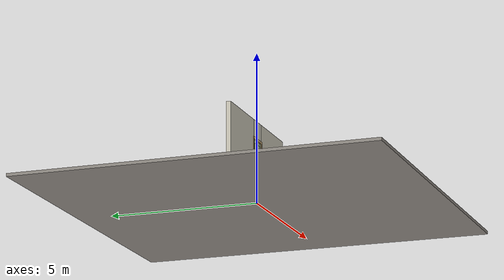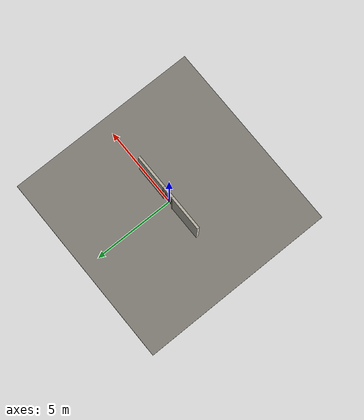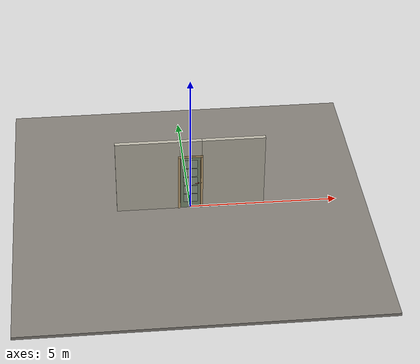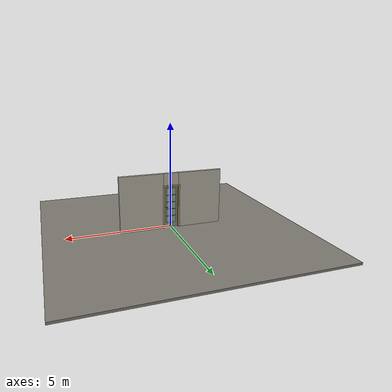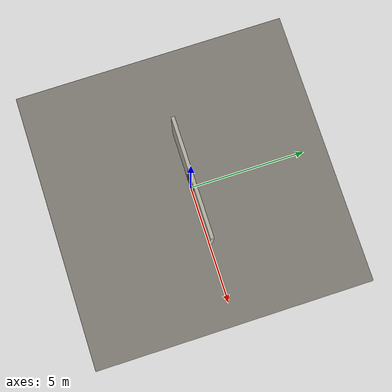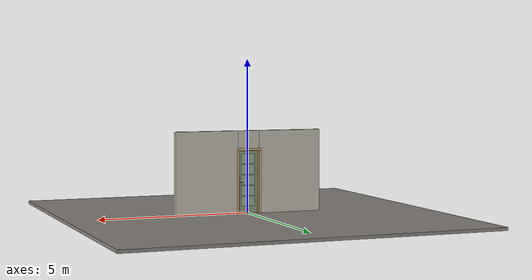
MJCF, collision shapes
<?xml version="1.0" ?>
<mujoco model="db0105_swing_single_full">
  <compiler angle="radian" meshdir="../../hardware" texturedir="../../textures" autolimits="true" inertiafromgeom="false"/>
  <option timestep="0.002" integrator="implicitfast" cone="elliptic" impratio="10" noslip_iterations="3">
    <flag multiccd="enable"/>
  </option>
  <size memory="16M"/>
  <default>
    <geom condim="4" solref="0.005 1" solimp="0.95 0.99 0.001"/>
    <joint solreflimit="0.005 1" solimplimit="0.95 0.99 0.001"/>
    <tendon solreflimit="0.005 1"/>
    <equality solref="0.002 1"/>
  </default>
  <visual>
    <headlight ambient="0.4 0.4 0.4" diffuse="0.7 0.7 0.7" specular="0.2 0.2 0.2"/>
    <quality shadowsize="4096"/>
    <map znear="0.01" zfar="60"/>
  </visual>
  <asset>
    <mesh name="hinge_96510cf394" file="hinge_96510cf394.obj"/>
    <mesh name="hinge_jamb_7fd4ca52b2" file="hinge_jamb_7fd4ca52b2.obj"/>
    <mesh name="lever_9f02b544cf" file="lever_9f02b544cf.obj"/>
    <material name="mat_floor" rgba="0.55 0.53 0.5 1" specular="0.2" shininess="0.15" reflectance="0"/>
    <material name="mat_wall" rgba="0.78 0.76 0.7 1" specular="0.2" shininess="0.1" reflectance="0"/>
    <material name="mat_leaf" rgba="0.55 0.62 0.5 1" specular="0.2" shininess="0.45" reflectance="0"/>
    <material name="mat_glass" rgba="0.85 0.92 0.95 0.25" specular="0.2" shininess="0.95" reflectance="0.1"/>
    <material name="mat_hinge" rgba="0.65 0.66 0.68 1" specular="0.74" shininess="0.5" reflectance="0.36"/>
    <material name="mat_op_nickel_satin" rgba="0.72 0.7 0.66 1" specular="0.8" shininess="0.65" reflectance="0.4"/>
    <material name="mat_trim" rgba="0.85 0.66 0.3 1" specular="0.8" shininess="0.75" reflectance="0.4"/>
    <material name="mat_bolt" rgba="0.85 0.66 0.3 1" specular="0.8" shininess="0.75" reflectance="0.4"/>
    <material name="mat_frame" rgba="0.82 0.7 0.5 1" specular="0.2" shininess="0.45" reflectance="0"/>
    <texture name="skybox" type="skybox" builtin="gradient" rgb1="0.6 0.7 0.85" rgb2="0.9 0.92 0.95" width="256" height="256"/>
  </asset>
  <worldbody>
    <light name="sun" pos="1.5 -2.5 4" dir="-0.3 0.5 -0.8" directional="true" diffuse="0.8 0.8 0.8" specular="0.3 0.3 0.3" castshadow="true"/>
    <light name="fill" pos="-1.5 2.5 3" dir="0.3 -0.5 -0.7" directional="true" diffuse="0.35 0.35 0.4" castshadow="false"/>
    <camera name="robot_view" pos="0 -2.494187 1.734312" xyaxes="1 0 0 0 0.26963 0.962964" fovy="52"/>
    <camera name="far_view" pos="0 2.590187 1.734312" xyaxes="-1 0 0 0 -0.26963 0.962964" fovy="52"/>
    <camera name="iso" pos="1.932062 -2.087438 2.141063" xyaxes="0.741536 0.670913 0 -0.242917 0.268487 0.932151" fovy="46"/>
    <camera name="detail_handle" pos="0.3495 -0.8725 1.296" xyaxes="0.97561 0.219512 0 -0.070934 0.315262 0.94635" fovy="38"/>
    <geom name="floor" type="box" size="6 6 0.05" pos="0 0 -0.05" material="mat_floor" group="0" contype="1" conaffinity="1" friction="0.8 0.005 0.0001" density="2400"/>
    <geom name="wall_left" type="box" size="1.07375 0.0725 1.35" pos="-1.42625 0.048 1.35" material="mat_wall" group="0" contype="1" conaffinity="1" friction="0.6 0.005 0.0001" density="800"/>
    <geom name="wall_right" type="box" size="1.05875 0.0725 1.35" pos="1.44125 0.048 1.35" material="mat_wall" group="0" contype="1" conaffinity="1" friction="0.6 0.005 0.0001" density="800"/>
    <geom name="wall_header" type="box" size="0.3675 0.0725 0.303" pos="0.015 0.048 2.397" material="mat_wall" group="0" contype="1" conaffinity="1" friction="0.6 0.005 0.0001" density="800"/>
    <geom name="hinge_0_jamb" type="mesh" mesh="hinge_jamb_7fd4ca52b2" pos="-0.3305 -0.0245 0.259" material="mat_hinge" group="1" contype="0" conaffinity="0" density="7850"/>
    <geom name="hinge_1_jamb" type="mesh" mesh="hinge_jamb_7fd4ca52b2" pos="-0.3305 -0.0245 1.861" material="mat_hinge" group="1" contype="0" conaffinity="0" density="7850"/>
    <geom name="jamb_hinge" type="box" size="0.0095 0.0725 1.0225" pos="-0.343 0.048 1.0225" material="mat_frame" group="0" contype="1" conaffinity="1" friction="0.6 0.005 0.0001" density="400"/>
    <geom name="strike_1016_wall_n" type="box" size="0.0245 0.056325 0.0167" pos="0.358 0.064175 1.016" material="mat_frame" group="0" contype="1" conaffinity="1" friction="0.6 0.005 0.0001" density="400"/>
    <geom name="strike_1016_wall_p" type="box" size="0.0245 0.008 0.0167" pos="0.358 -0.01585 1.016" material="mat_frame" group="0" contype="1" conaffinity="1" friction="0.6 0.005 0.0001" density="400"/>
    <geom name="strike_1016_ramp" type="box" size="0.0245 0.01649 0.0167" pos="0.362636 -0.028673 1.016" quat="0.977148 0 0 0.212558" material="mat_frame" group="0" contype="1" conaffinity="1" friction="0.12 0.005 0.0001" density="400"/>
    <geom name="strike_1016_back" type="box" size="0.01615 0.00785 0.0167" pos="0.36635 0 1.016" material="mat_frame" group="0" contype="1" conaffinity="1" friction="0.6 0.005 0.0001" density="400"/>
    <geom name="jamb_strike_0" type="box" size="0.0245 0.0725 0.49965" pos="0.358 0.048 0.49965" material="mat_frame" group="0" contype="1" conaffinity="1" friction="0.6 0.005 0.0001" density="400"/>
    <geom name="jamb_strike_1" type="box" size="0.0245 0.0725 0.50615" pos="0.358 0.048 1.53885" material="mat_frame" group="0" contype="1" conaffinity="1" friction="0.6 0.005 0.0001" density="400"/>
    <geom name="jamb_head" type="box" size="0.3675 0.0725 0.0095" pos="0.015 0.048 2.0545" material="mat_frame" group="0" contype="1" conaffinity="1" friction="0.6 0.005 0.0001" density="400"/>
    <geom name="head_stud" type="box" size="0.3675 0.0725 0.015" pos="0.015 0.048 2.079" material="mat_wall" group="0" contype="1" conaffinity="1" friction="0.6 0.005 0.0001" density="500"/>
    <geom name="stop_hinge" type="box" size="0.0055 0.016 1.0225" pos="-0.328 0.034 1.0225" material="mat_frame" group="0" contype="1" conaffinity="1" friction="0.6 0.005 0.0001" density="400"/>
    <geom name="stop_strike" type="box" size="0.0055 0.016 1.0225" pos="0.328 0.034 1.0225" material="mat_frame" group="0" contype="1" conaffinity="1" friction="0.6 0.005 0.0001" density="400"/>
    <geom name="stop_head" type="box" size="0.3335 0.016 0.0055" pos="0 0.034 2.0395" material="mat_frame" group="0" contype="1" conaffinity="1" friction="0.6 0.005 0.0001" density="400"/>
    <geom name="casing_l_n" type="box" size="0.035 0.008 1.032" pos="-0.3825 -0.0325 1.0225" material="mat_frame" group="2" contype="0" conaffinity="0" density="400"/>
    <geom name="casing_r_n" type="box" size="0.035 0.008 1.032" pos="0.3825 -0.0325 1.0225" material="mat_frame" group="2" contype="0" conaffinity="0" density="400"/>
    <geom name="casing_h_n" type="box" size="0.4175 0.008 0.035" pos="0 -0.0325 2.094" material="mat_frame" group="2" contype="0" conaffinity="0" density="400"/>
    <geom name="casing_l_p" type="box" size="0.035 0.008 1.032" pos="-0.3825 0.1285 1.0225" material="mat_frame" group="2" contype="0" conaffinity="0" density="400"/>
    <geom name="casing_r_p" type="box" size="0.035 0.008 1.032" pos="0.3825 0.1285 1.0225" material="mat_frame" group="2" contype="0" conaffinity="0" density="400"/>
    <geom name="casing_h_p" type="box" size="0.4175 0.008 0.035" pos="0 0.1285 2.094" material="mat_frame" group="2" contype="0" conaffinity="0" density="400"/>
    <site name="approach_point" pos="0 -1.5 0" quat="1 0 0 0" size="0.05" rgba="0.2 0.9 0.2 0.5" group="4"/>
    <site name="goal_point" pos="0 1.5 0" quat="1 0 0 0" size="0.05" rgba="0.2 0.9 0.2 0.5" group="4"/>
    <site name="door_plane_center" pos="0 0 1.0225" quat="1 0 0 0" size="0.02" rgba="0.2 0.9 0.2 0.5" group="4"/>
    <body name="leaf" pos="-0.3335 0 0">
      <inertial pos="0.315186 -0.000831 1.027288" mass="15.957559" quat="-0.498886 0.502084 -0.497875 -0.501143" diaginertia="0.643912805 5.740039877 6.38027147"/>
      <joint name="leaf_hinge" type="hinge" axis="0 0 -1" pos="0.003 -0.0245 0" limited="true" range="0 1.745329" damping="0.119633" frictionloss="0.556425" armature="0.02"/>
      <geom name="leaf_slab" type="box" size="0.33 0.0175 1.016" pos="0.333 0 1.025" material="mat_leaf" group="0" contype="1" conaffinity="1" friction="0.35 0.005 0.0001" density="1"/>
      <geom name="leaf_glass_0" type="box" size="0.1125 0.0183 0.158688" pos="0.2055 0 0.391208" material="mat_glass" group="1" contype="0" conaffinity="0" density="1"/>
      <geom name="leaf_glass_1" type="box" size="0.1125 0.0183 0.158688" pos="0.4605 0 0.391208" material="mat_glass" group="1" contype="0" conaffinity="0" density="1"/>
      <geom name="leaf_glass_2" type="box" size="0.1125 0.0183 0.158688" pos="0.2055 0 0.738584" material="mat_glass" group="1" contype="0" conaffinity="0" density="1"/>
      <geom name="leaf_glass_3" type="box" size="0.1125 0.0183 0.158688" pos="0.4605 0 0.738584" material="mat_glass" group="1" contype="0" conaffinity="0" density="1"/>
      <geom name="leaf_glass_4" type="box" size="0.1125 0.0183 0.158688" pos="0.2055 0 1.08596" material="mat_glass" group="1" contype="0" conaffinity="0" density="1"/>
      <geom name="leaf_glass_5" type="box" size="0.1125 0.0183 0.158688" pos="0.4605 0 1.08596" material="mat_glass" group="1" contype="0" conaffinity="0" density="1"/>
      <geom name="leaf_glass_6" type="box" size="0.1125 0.0183 0.158688" pos="0.2055 0 1.433336" material="mat_glass" group="1" contype="0" conaffinity="0" density="1"/>
      <geom name="leaf_glass_7" type="box" size="0.1125 0.0183 0.158688" pos="0.4605 0 1.433336" material="mat_glass" group="1" contype="0" conaffinity="0" density="1"/>
      <geom name="leaf_glass_8" type="box" size="0.1125 0.0183 0.158688" pos="0.2055 0 1.780712" material="mat_glass" group="1" contype="0" conaffinity="0" density="1"/>
      <geom name="leaf_glass_9" type="box" size="0.1125 0.0183 0.158688" pos="0.4605 0 1.780712" material="mat_glass" group="1" contype="0" conaffinity="0" density="1"/>
      <geom name="hinge_0" type="mesh" mesh="hinge_96510cf394" pos="0.003 -0.0245 0.259" material="mat_hinge" group="1" contype="0" conaffinity="0" density="7850"/>
      <geom name="hinge_1" type="mesh" mesh="hinge_96510cf394" pos="0.003 -0.0245 1.861" material="mat_hinge" group="1" contype="0" conaffinity="0" density="7850"/>
      <geom name="leaf_latch_bolt_faceplate" type="box" size="0.0006 0.01235 0.0267" pos="0.6624 0 1.016" material="mat_bolt" group="1" contype="0" conaffinity="0" density="8500"/>
      <site name="leaf_edge_mid" pos="0.663 0 1.016" quat="1 0 0 0" size="0.02" rgba="0.2 0.9 0.2 0.5" group="4"/>
      <body name="leaf_handle" pos="0.603 0 1.016">
        <inertial pos="-0.028543 -0.000681 0" mass="0.978226" quat="0.71182 0 0 -0.702362" diaginertia="0.001771826 0.00319423 0.004787852"/>
        <joint name="leaf_handle_hinge" type="hinge" axis="0 -1 0" limited="true" range="0 0.96" damping="0.245624" frictionloss="0.048" stiffness="1.2" springref="-0.458333" armature="0.01"/>
        <geom name="leaf_handle_spindle" type="cylinder" size="0.006 0.0255" pos="0 0 0" quat="0.707107 -0.707107 0 0" material="mat_op_nickel_satin" group="1" contype="0" conaffinity="0" density="7850"/>
        <geom name="leaf_handle_lever_n" type="mesh" mesh="lever_9f02b544cf" pos="0 -0.0175 0" quat="0.707107 0.707107 0 0" material="mat_op_nickel_satin" group="1" contype="0" conaffinity="0" density="3000"/>
        <geom name="leaf_handle_lever_col_n" type="capsule" size="0.0095 0.053" pos="-0.0625 -0.0725 0" quat="0.707107 0 -0.707107 0" material="mat_op_nickel_satin" group="3" contype="1" conaffinity="1" rgba="0.8 0.3 0.3 0.25" friction="0.7 0.01 0.0001" density="3000"/>
        <geom name="leaf_handle_hub_col_n" type="cylinder" size="0.012 0.022" pos="0 -0.0475 0" quat="0.707107 -0.707107 0 0" material="mat_op_nickel_satin" group="3" contype="1" conaffinity="1" rgba="0.8 0.3 0.3 0.25" friction="0.6 0.005 0.0001" density="3000"/>
        <geom name="leaf_handle_turn_button_n" type="cylinder" size="0.006 0.005" pos="0 -0.083 0" quat="0.707107 -0.707107 0 0" material="mat_trim" group="1" contype="0" conaffinity="0" density="7100"/>
        <geom name="leaf_handle_lever_p" type="mesh" mesh="lever_9f02b544cf" pos="0 0.0175 0" quat="-0.707107 0.707107 0 0" material="mat_op_nickel_satin" group="1" contype="0" conaffinity="0" density="3000"/>
        <geom name="leaf_handle_lever_col_p" type="capsule" size="0.0095 0.053" pos="-0.0625 0.0725 0" quat="0.707107 0 -0.707107 0" material="mat_op_nickel_satin" group="3" contype="1" conaffinity="1" rgba="0.8 0.3 0.3 0.25" friction="0.7 0.01 0.0001" density="3000"/>
        <geom name="leaf_handle_hub_col_p" type="cylinder" size="0.012 0.022" pos="0 0.0475 0" quat="0.707107 -0.707107 0 0" material="mat_op_nickel_satin" group="3" contype="1" conaffinity="1" rgba="0.8 0.3 0.3 0.25" friction="0.6 0.005 0.0001" density="3000"/>
        <site name="leaf_handle_grip_n" pos="-0.1 -0.0725 0" quat="1 0 0 0" size="0.012" rgba="0.2 0.9 0.2 0.5" group="4"/>
        <site name="leaf_handle_grip_p" pos="-0.1 0.0725 0" quat="1 0 0 0" size="0.012" rgba="0.2 0.9 0.2 0.5" group="4"/>
      </body>
      <body name="leaf_latch_bolt" pos="0.663 0 1.016">
        <inertial pos="-0.00865 0 0" mass="0.041419" quat="0.92388 -0.382683 0 0" diaginertia="0.000000798 0.000005598 0.000005598"/>
        <joint name="leaf_latch_bolt_slide" type="slide" axis="-1 0 0" limited="true" range="0 0.0127" damping="2" frictionloss="0.3" stiffness="300" springref="-0.008333" armature="0.1"/>
        <geom name="leaf_latch_bolt_capsule" type="capsule" size="0.00635 0.015" pos="-0.00865 0 0" quat="0.707107 0 0.707107 0" material="mat_bolt" group="0" contype="1" conaffinity="1" friction="0.2 0.005 0.0001" density="8500"/>
      </body>
    </body>
  </worldbody>
  <tendon>
    <fixed name="leaf_latch_bolt_coupling" limited="true" range="0 10">
      <joint joint="leaf_latch_bolt_slide" coef="1"/>
      <joint joint="leaf_handle_hinge" coef="-0.013956"/>
    </fixed>
  </tendon>
  <sensor>
    <jointpos name="leaf_hinge_pos" joint="leaf_hinge"/>
    <jointvel name="leaf_hinge_vel" joint="leaf_hinge"/>
    <jointpos name="leaf_handle_hinge_pos" joint="leaf_handle_hinge"/>
    <jointvel name="leaf_handle_hinge_vel" joint="leaf_handle_hinge"/>
    <jointpos name="leaf_latch_bolt_slide_pos" joint="leaf_latch_bolt_slide"/>
    <jointvel name="leaf_latch_bolt_slide_vel" joint="leaf_latch_bolt_slide"/>
  </sensor>
</mujoco>
